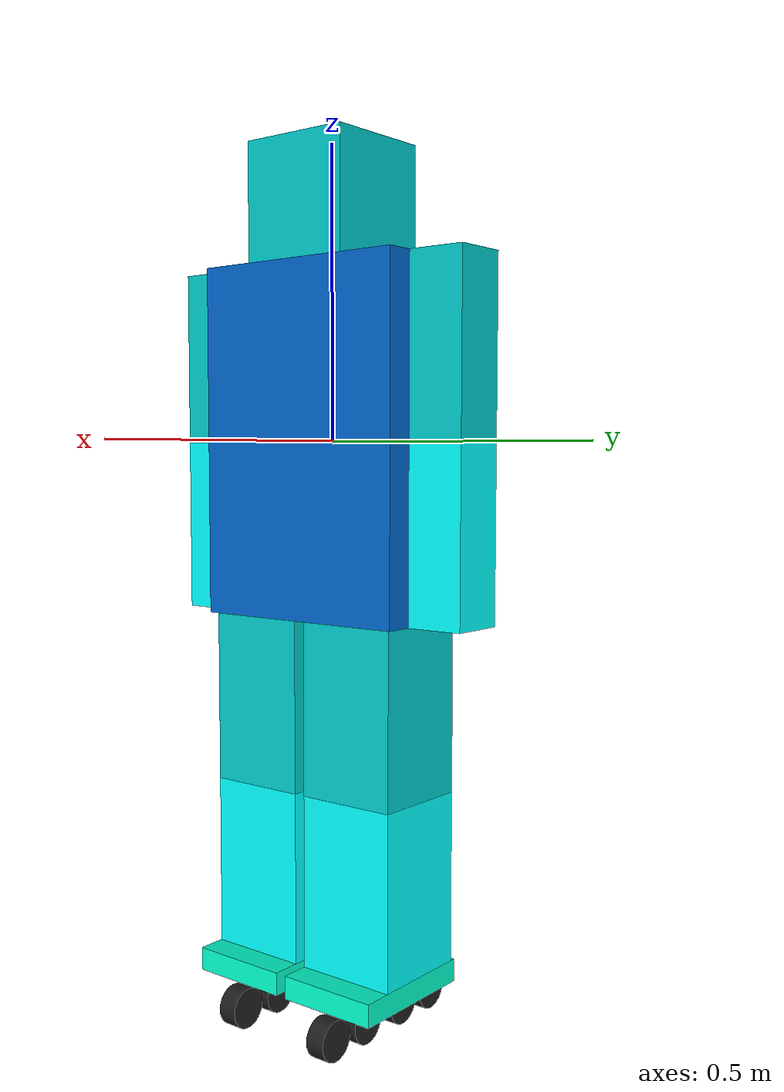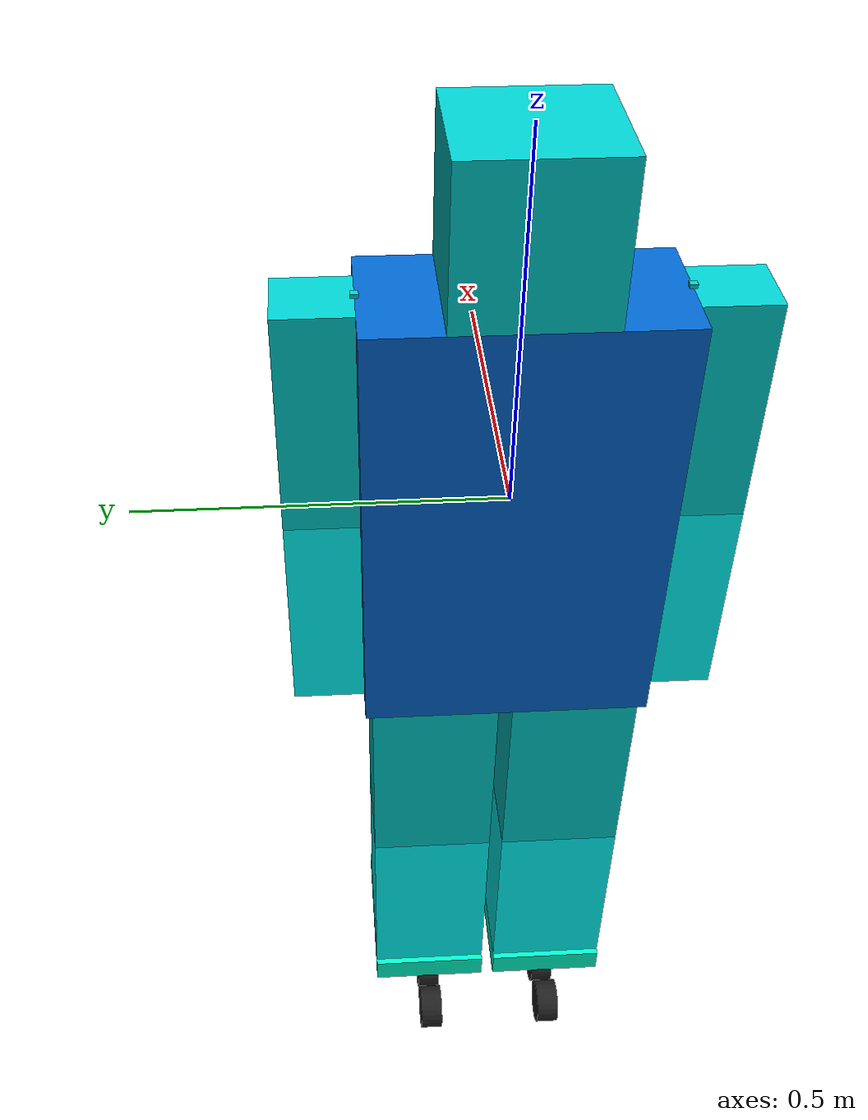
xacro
<?xml version="1.0"?>
<robot name="myfirst"  xmlns:xacro="http://ros.org/wiki/xacro">

  <xacro:property name="thickness" value="0.2" />
  <xacro:property name="bodylen" value="0.6" />
  <xacro:property name="bodywidth" value="0.4" />
  <xacro:property name="joint_size" value="0.01"/>
  <xacro:property name="arm_width" value="0.1"/>
  <xacro:property name="arm_len" value="0.3"/>
  <xacro:property name="leg_width" value="0.18"/>
  <xacro:property name="leg_len" value="0.3"/>

  <xacro:property name="foot_len" value="0.24"/>
  <xacro:property name="foot_width" value="0.18"/>
  <xacro:property name="foot_high" value="0.04"/>

  <xacro:property name="head_mass" value="8.26"/>
  <xacro:property name="body_mass" value="43.46"/>
  <xacro:property name="upper_arm_mass" value="2.71"/>
  <xacro:property name="lower_arm_mass" value="2.23"/>
  <xacro:property name="upper_leg_mass" value="14.16"/>
  <xacro:property name="lower_leg_mass" value="4.33"/>
  <xacro:property name="foot_mass" value="1.37"/>

  <xacro:property name="baselen" value="0.4" />
  <xacro:property name="wheeldiam" value="0.07" />

  <xacro:property name="wheelkp" value="10000000.0" />
  <xacro:property name="wheelkd" value="1.0" />
  <xacro:property name="wheelmu1" value="100" />
  <xacro:property name="wheelmu2" value="1000000" />

  <xacro:property name="wheelfidx" value="0" />
  <xacro:property name="wheelfidy" value="1" />
  <xacro:property name="wheelfidz" value="0" />

  <xacro:property name="wheelmass" value="2" />

  <xacro:property name="velocity" value="10"/>

  <material name="color1">
    <color rgba="0 0.4 0.8 1"/>
  </material>

  <material name="color2">
    <color rgba="0 0.8 0.8 1"/>
  </material>

  <material name="color3">
    <color rgba="0 1 1 1"/>
  </material>

  <material name="color4">
    <color rgba="0 1 0.8 1"/>
  </material>

  <xacro:macro name="default_inertial" params="mass">
    <inertial>
      <mass value="${mass}" />
      <inertia ixx="1.0" ixy="0.0" ixz="0.0" iyy="1.0" iyz="0.0" izz="1.0" />
    </inertial>
  </xacro:macro>

  <link name="base_link">
    <visual>
      <geometry>
        <box size="${thickness} ${bodywidth} ${bodylen}"/>
      </geometry>
      <material name="color1"/>
    </visual>
    <collision>
      <geometry>
        <box size="${thickness} ${bodywidth} ${bodylen}"/>
      </geometry>
    </collision>
    <xacro:default_inertial mass="${body_mass}"/>
  </link>

  <link name="head">
    <visual>
      <geometry>
        <box size="${thickness} ${thickness} ${thickness}"/>
      </geometry>
      <material name="color2"/>
    </visual>
    <collision>
      <geometry>
        <box size="${thickness} ${thickness} ${thickness}"/>
      </geometry>
    </collision>
    <xacro:default_inertial mass="${head_mass}"/>
  </link>

  <joint name="body_to_head" type="revolute">
    <parent link="base_link"/>
    <child link="head"/>
    <axis xyz="0 0 1"/>
    <limit effort="1000.0" lower="-1" upper="1" velocity="${velocity}"/>
    <origin xyz="0 0 0.4"/>
  </joint>

  <transmission name="body_to_head_trans">
    <type>transmission_interface/SimpleTransmission</type>
    <actuator name="body_to_head_motor">
      <mechanicalReduction>1</mechanicalReduction>
      <hardwareInterface>hardware_interface/EffortJointInterface</hardwareInterface>
    </actuator>
    <joint name="body_to_head">
      <hardwareInterface>hardware_interface/EffortJointInterface</hardwareInterface>
    </joint>
  </transmission>

  <xacro:macro name="shoulder" params="prefix reflect">
    <link name="${prefix}_shoulder">
      <visual>
        <geometry>
          <box size="${joint_size} ${joint_size} ${joint_size}"/>
        </geometry>
        <origin xyz="0 0.0 0.0"/>
        <material name="color2"/>
      </visual>
      <collision>
        <geometry>
          <box size="${joint_size} ${joint_size} ${joint_size}"/>
        </geometry>
      </collision>
      <xacro:default_inertial mass="0.01"/>
    </link>

    <joint name="body_to_${prefix}_shoulder" type="revolute">
      <parent link="base_link"/>
      <child link="${prefix}_shoulder"/>
      <axis xyz="1 0 0"/>
      <limit effort="1000.0" lower="${-((reflect+1)/2)*2.7}" upper="${-((reflect-1)/2)*2.7}" velocity="${velocity}"/>
      <origin xyz="0 ${-0.2*reflect} 0.3"/>
    </joint>
    <transmission name="body_to_${prefix}_shoulder_trans">
      <type>transmission_interface/SimpleTransmission</type>
      <actuator name="body_to_${prefix}_shoulder_motor">
        <mechanicalReduction>1</mechanicalReduction>
      </actuator>
      <joint name="body_to_${prefix}_shoulder">
        <hardwareInterface>hardware_interface/EffortJointInterface</hardwareInterface>
      </joint>
    </transmission>

  </xacro:macro>
  <xacro:shoulder prefix="right" reflect="1" />
  <xacro:shoulder prefix="left" reflect="-1" />

  <xacro:macro name="arm" params="prefix reflect">
    <link name="${prefix}_up_arm">
      <visual>
        <geometry>
          <box size="${arm_width} ${arm_width} ${arm_len}"/>
        </geometry>
        <origin xyz="0 ${-0.05*reflect} -0.15"/>
        <material name="color2"/>
      </visual>
      <collision>
        <geometry>
          <box size="${arm_width} ${arm_width} ${arm_len}"/>
        </geometry>
      </collision>
      <xacro:default_inertial mass="${upper_arm_mass}"/>
    </link>

    <link name="${prefix}_down_arm">
      <visual>
        <geometry>
          <box size="${arm_width} ${arm_width} ${arm_len}"/>
        </geometry>
        <origin xyz="0 0 -0.15"/>
        <material name="color3"/>
      </visual>
      <collision>
        <geometry>
          <box size="${arm_width} ${arm_width} ${arm_len}"/>
        </geometry>
      </collision>
      <xacro:default_inertial mass="${lower_arm_mass}"/>
    </link>

    <joint name="${prefix}_shoulder_to_${prefix}_up_arm" type="revolute">
      <parent link="${prefix}_shoulder"/>
      <child link="${prefix}_up_arm"/>
      <axis xyz="0 1 0"/>
      <limit effort="1000.0" lower="-2.7" upper="0.7" velocity="${velocity}"/>
      <origin xyz="0 0.0 0"/>
    </joint>

     <transmission name="${prefix}_shoulder_to_${prefix}_up_arm_trans">
      <type>transmission_interface/SimpleTransmission</type>
      <actuator name="${prefix}_shoulder_to_${prefix}_up_arm_motor">
        <mechanicalReduction>1</mechanicalReduction>
        <hardwareInterface>hardware_interface/EffortJointInterface</hardwareInterface>
      </actuator>
      <joint name="${prefix}_shoulder_to_${prefix}_up_arm">
        <hardwareInterface>hardware_interface/EffortJointInterface</hardwareInterface>
      </joint>
    </transmission>

    <joint name="${prefix}_up_arm_to_${prefix}_down_arm" type="revolute">
      <parent link="${prefix}_up_arm"/>
      <child link="${prefix}_down_arm"/>
       <axis xyz="0 1 0"/>
      <limit effort="1000.0" lower="-2.7" upper="0.5" velocity="${velocity}"/>
      <origin xyz="0 ${-0.05*reflect} -0.3"/>
    </joint>

    <transmission name="${prefix}_up_arm_to_${prefix}_down_arm_trans">
      <type>transmission_interface/SimpleTransmission</type>
      <actuator name="${prefix}_up_arm_to_${prefix}_down_arm_motor">
        <mechanicalReduction>1</mechanicalReduction>
        <hardwareInterface>hardware_interface/EffortJointInterface</hardwareInterface>
      </actuator>
      <joint name="${prefix}_up_arm_to_${prefix}_down_arm">
        <hardwareInterface>hardware_interface/EffortJointInterface</hardwareInterface>
      </joint>
    </transmission>

  </xacro:macro>
  <xacro:arm prefix="right" reflect="1" />
  <xacro:arm prefix="left" reflect="-1" />

  <xacro:macro name="leg" params="prefix reflect">

    <link name="${prefix}_leg_joint">
      <visual>
        <geometry>
          <box size="${joint_size} ${joint_size} ${joint_size}"/>
        </geometry>
        <origin xyz="0 0.0 0.0"/>
        <material name="color2"/>
      </visual>
      <collision>
        <geometry>
          <box size="${joint_size} ${joint_size} ${joint_size}"/>
        </geometry>
      </collision>
      <xacro:default_inertial mass="0.01"/>
    </link>

    <link name="${prefix}_up_leg">
      <visual>
        <geometry>
          <box size="${leg_width} ${leg_width} ${leg_len}"/>
        </geometry>
        <origin xyz="0 0 -0.15"/>
        <material name="color2"/>
      </visual>
      <collision>
        <geometry>
          <box size="${leg_width} ${leg_width} ${leg_len}"/>
        </geometry>
      </collision>
      <xacro:default_inertial mass="${upper_leg_mass}"/>
    </link>

    <link name="${prefix}_down_leg">
      <visual>
        <geometry>
          <box size="${leg_width} ${leg_width} ${leg_len}"/>
        </geometry>
        <origin xyz="0 0 -0.15"/>
        <material name="color3"/>
      </visual>
      <collision>
        <geometry>
          <box size="${leg_width} ${leg_width} ${leg_len}"/>
        </geometry>
      </collision>
      <xacro:default_inertial mass="${lower_leg_mass}"/>
    </link>

    <link name="${prefix}_foot">
      <visual>
        <geometry>
          <box size="${foot_len} ${foot_width} ${foot_high}"/>
        </geometry>
        <origin xyz="0.02 0 -0.02"/>
        <material name="color4"/>
      </visual>
      <collision>
        <geometry>
          <box size="${foot_len} ${foot_width} ${foot_high}"/>
        </geometry>
      </collision>
      <xacro:default_inertial mass="${foot_mass}"/>
    </link>

    <joint name="body_to_${prefix}_leg_joint" type="revolute">
      <parent link="base_link"/>
      <child link="${prefix}_leg_joint"/>
      <axis xyz="1 0 0"/>
      <limit effort="1000.0" lower="${-((reflect+1)/2)*2.7}" upper="${-((reflect-1)/2)*2.7}" velocity="${velocity}"/>
      <origin xyz="0 ${-0.1*reflect} -0.3"/>
    </joint>

    <transmission name="body_to_${prefix}_leg_joint_trans">
      <type>transmission_interface/SimpleTransmission</type>
      <actuator name="body_to_${prefix}_leg_joint_motor">
        <mechanicalReduction>1</mechanicalReduction>
        <hardwareInterface>hardware_interface/EffortJointInterface</hardwareInterface>
      </actuator>
      <joint name="body_to_${prefix}_leg_joint">
        <hardwareInterface>hardware_interface/EffortJointInterface</hardwareInterface>
      </joint>
    </transmission>

    <joint name="${prefix}_leg_joint_to_${prefix}_up_leg" type="revolute">
      <parent link="${prefix}_leg_joint"/>
      <child link="${prefix}_up_leg"/>
      <origin xyz="0 0.0 0"/>
      <axis xyz="0 1 0"/>
      <limit effort="1000.0" lower="-2" upper="1.0" velocity="${velocity}"/>
    </joint>

    <transmission name="${prefix}_leg_joint_to_${prefix}_up_leg_trans">
      <type>transmission_interface/SimpleTransmission</type>
      <actuator name="${prefix}_leg_joint_to_${prefix}_up_leg_motor">
        <mechanicalReduction>1</mechanicalReduction>
        <hardwareInterface>hardware_interface/EffortJointInterface</hardwareInterface>
      </actuator>
      <joint name="${prefix}_leg_joint_to_${prefix}_up_leg">
        <hardwareInterface>hardware_interface/EffortJointInterface</hardwareInterface>
      </joint>
    </transmission>

    <joint name="${prefix}_up_leg_to_${prefix}_down_leg" type="revolute">
      <parent link="${prefix}_up_leg"/>
      <child link="${prefix}_down_leg"/>
      <axis xyz="0 1 0"/>
      <limit effort="1000.0" lower="-0.1" upper="2.0" velocity="${velocity}"/>
      <origin xyz="0 0 -0.3"/>
    </joint>

    <transmission name="${prefix}_up_leg_to_${prefix}_down_leg_trans">
      <type>transmission_interface/SimpleTransmission</type>
      <actuator name="${prefix}_up_leg_to_${prefix}_down_leg_motor">
        <mechanicalReduction>1</mechanicalReduction>
        <hardwareInterface>hardware_interface/EffortJointInterface</hardwareInterface>
      </actuator>
      <joint name="${prefix}_up_leg_to_${prefix}_down_leg">
        <hardwareInterface>hardware_interface/EffortJointInterface</hardwareInterface>
      </joint>
    </transmission>

    <joint name="${prefix}_down_leg_to_${prefix}_foot" type="revolute">
      <parent link="${prefix}_down_leg"/>
      <child link="${prefix}_foot"/>
      <axis xyz="0 1 0"/>
      <limit effort="1000.0" lower="-0.5" upper="1.0" velocity="${velocity}"/>
      <origin xyz="0 0 -0.3"/>
    </joint>

    <transmission name="${prefix}_down_leg_to_${prefix}_foot">
      <type>transmission_interface/SimpleTransmission</type>
      <actuator name="${prefix}_down_leg_to_${prefix}_foot">
        <mechanicalReduction>1</mechanicalReduction>
        <hardwareInterface>hardware_interface/EffortJointInterface</hardwareInterface>
      </actuator>
      <joint name="${prefix}_down_leg_to_${prefix}_foot">
        <hardwareInterface>hardware_interface/EffortJointInterface</hardwareInterface>
      </joint>
    </transmission>

  </xacro:macro>
  <xacro:leg prefix="right" reflect="1" />
  <xacro:leg prefix="left" reflect="-1" />

  <xacro:macro name="wheel" params="prefix reflect">

    <link name="${prefix}_front_wheel">
      <visual>
        <origin xyz="0 0 0" rpy="${pi/2} 0 0" />
        <geometry>
          <cylinder radius="${wheeldiam/2}" length="${wheeldiam/2}"/>
        </geometry>
        <material name="black"/>
      </visual>
      <collision>
        <origin xyz="0 0 0" rpy="${pi/2} 0 0" />
        <geometry>
          <cylinder radius="${wheeldiam/2}" length="${wheeldiam/2}"/>
        </geometry>
      </collision>
      <xacro:default_inertial mass="${wheelmass}"/>
    </link>

    <link name="${prefix}_mid_front_wheel">
      <visual>
        <origin xyz="0 0 0" rpy="${pi/2} 0 0" />
        <geometry>
          <cylinder radius="${wheeldiam/2}" length="${wheeldiam/2}"/>
        </geometry>
        <material name="black"/>
      </visual>
      <collision>
        <origin xyz="0 0 0" rpy="${pi/2} 0 0" />
        <geometry>
          <cylinder radius="${wheeldiam/2}" length="${wheeldiam/2}"/>
        </geometry>
      </collision>
      <xacro:default_inertial mass="${wheelmass}"/>
    </link>

    <link name="${prefix}_mid_back_wheel">
      <visual>
        <origin xyz="0 0 0" rpy="${pi/2} 0 0" />
        <geometry>
          <cylinder radius="${wheeldiam/2}" length="${wheeldiam/2}"/>
        </geometry>
        <material name="black"/>
      </visual>
      <collision>
        <origin xyz="0 0 0" rpy="${pi/2} 0 0" />
        <geometry>
          <cylinder radius="${wheeldiam/2}" length="${wheeldiam/2}"/>
        </geometry>
      </collision>
      <xacro:default_inertial mass="${wheelmass}"/>
    </link>

    <link name="${prefix}_back_wheel">
      <visual>
        <origin xyz="0 0 0" rpy="${pi/2} 0 0" />
        <geometry>
          <cylinder radius="${wheeldiam/2}" length="${wheeldiam/2}"/>
        </geometry>
        <material name="black"/>
      </visual>
      <collision>
        <origin xyz="0 0 0" rpy="${pi/2} 0 0" />
        <geometry>
          <cylinder radius="${wheeldiam/2}" length="${wheeldiam/2}"/>
        </geometry>
      </collision>
      <xacro:default_inertial mass="${wheelmass}"/>
    </link>

    <joint name="${prefix}_front_wheel_joint" type="continuous">
      <axis xyz="0 1 0" rpy="0 0 0" />
      <parent link="${prefix}_foot"/>
      <child link="${prefix}_front_wheel"/>
      <origin xyz="${baselen*reflect/3} 0 -${wheeldiam/2+.05}" rpy="0 0 0"/>
      <limit effort="100" velocity="100"/>
      <joint_properties damping="0.0" friction="0.0"/>
    </joint>

    <joint name="${prefix}_mid_front_wheel_joint" type="continuous">
      <axis xyz="0 1 0" rpy="0 0 0" />
      <parent link="${prefix}_foot"/>
      <child link="${prefix}_mid_front_wheel"/>
      <origin xyz="${baselen*reflect/8} 0 -${wheeldiam/2+.05}" rpy="0 0 0"/>
      <limit effort="100" velocity="100"/>
      <joint_properties damping="0.0" friction="0.0"/>
    </joint>

    <joint name="${prefix}_mid_back_wheel_joint" type="continuous">
      <axis xyz="0 1 0" rpy="0 0 0" />
      <parent link="${prefix}_foot"/>
      <child link="${prefix}_mid_back_wheel"/>
      <origin xyz="${-baselen*reflect/8} 0 -${wheeldiam/2+.05}" rpy="0 0 0"/>
      <limit effort="100" velocity="100"/>
      <joint_properties damping="0.0" friction="0.0"/>
    </joint>

    <joint name="${prefix}_back_wheel_joint" type="continuous">
      <axis xyz="0 1 0" rpy="0 0 0" />
      <parent link="${prefix}_foot"/>
      <child link="${prefix}_back_wheel"/>
      <origin xyz="${-baselen*reflect/3} 0 -${wheeldiam/2+.05}" rpy="0 0 0"/>
      <limit effort="100" velocity="100"/>
      <joint_properties damping="0.0" friction="0.0"/>
    </joint>

    <!-- This block provides the simulator (Gazebo) with information on a few additional
    physical properties. See http://gazebosim.org/tutorials/?tut=ros_urdf for more-->
    <gazebo reference="${prefix}_front_wheel">
      <mu1 value="${wheelmu1}"/>
      <mu2 value="${wheelmu2}"/>
      <kp value="${wheelkp}"/>
      <kd value="${wheelkd}"/>
      <material>Gazebo/Grey</material>
      <fdir1>${wheelfidx} ${wheelfidy} ${wheelfidz}</fdir1>
      <minDepth>0.01</minDepth>
    </gazebo>

    <gazebo reference="${prefix}_mid_front_wheel">
      <mu1 value="${wheelmu1}"/>
      <mu2 value="${wheelmu2}"/>
      <kp value="${wheelkp}"/>
      <kd value="${wheelkd}"/>
      <material>Gazebo/Grey</material>
      <fdir1>${wheelfidx} ${wheelfidy} ${wheelfidz}</fdir1>
      <minDepth>0.01</minDepth>
    </gazebo>

    <gazebo reference="${prefix}_mid_back_wheel">
      <mu1 value="${wheelmu1}"/>
      <mu2 value="${wheelmu2}"/>
      <kp value="${wheelkp}"/>
      <kd value="${wheelkd}"/>
      <material>Gazebo/Grey</material>
      <fdir1>${wheelfidx} ${wheelfidy} ${wheelfidz}</fdir1>
      <minDepth>0.01</minDepth>
    </gazebo>

    <gazebo reference="${prefix}_back_wheel">
      <mu1 value="${wheelmu1}"/>
      <mu2 value="${wheelmu2}"/>
      <kp value="${wheelkp}"/>
      <kd value="${wheelkd}"/>
      <material>Gazebo/Grey</material>
      <fdir1>${wheelfidx} ${wheelfidy} ${wheelfidz}</fdir1>
      <minDepth>0.01</minDepth>
    </gazebo>

  </xacro:macro>
  <xacro:wheel prefix="right" reflect="1" />
  <xacro:wheel prefix="left" reflect="-1" />

  <!-- Gazebo plugin for ROS Control -->
  <gazebo>
    <plugin name="gazebo_ros_control" filename="libgazebo_ros_control.so">
      <robotNamespace>/</robotNamespace>
    </plugin>
  </gazebo>

</robot>
